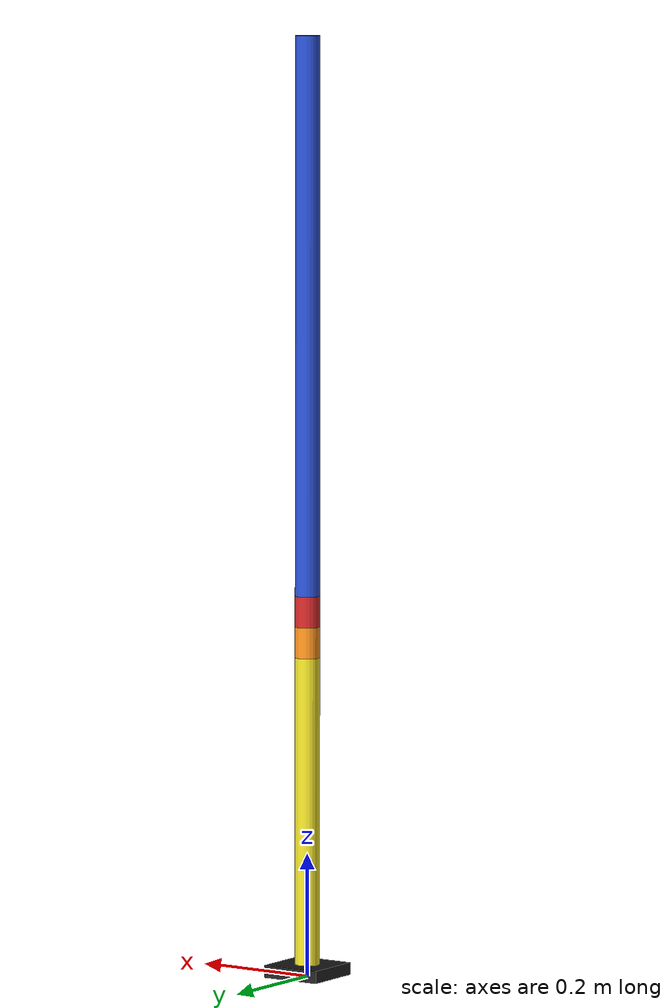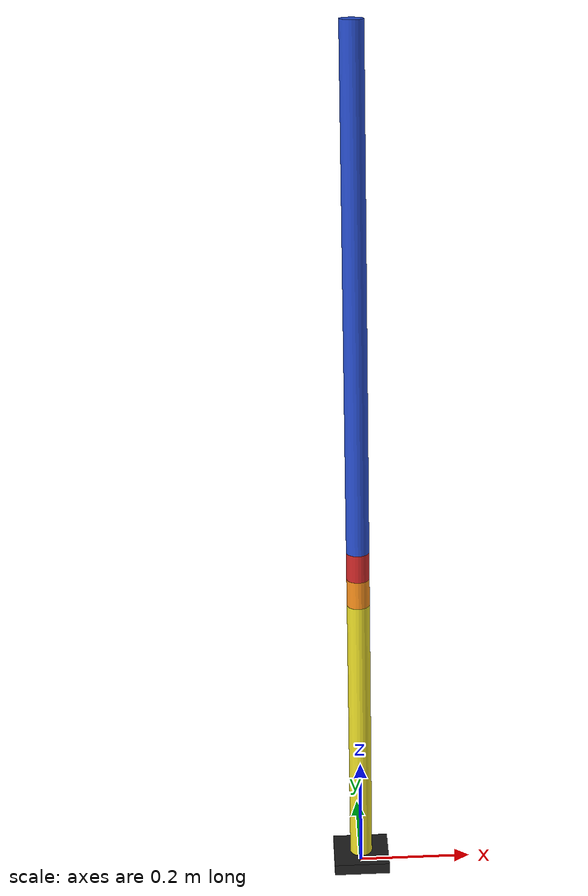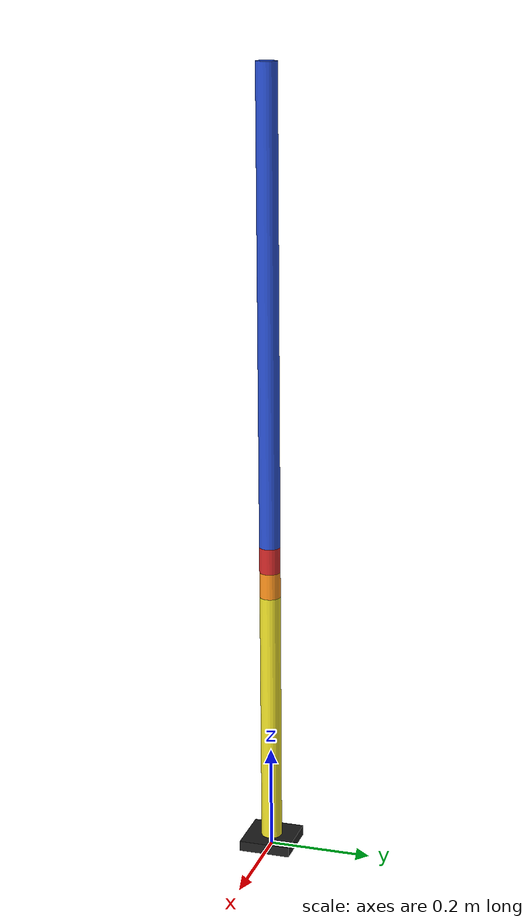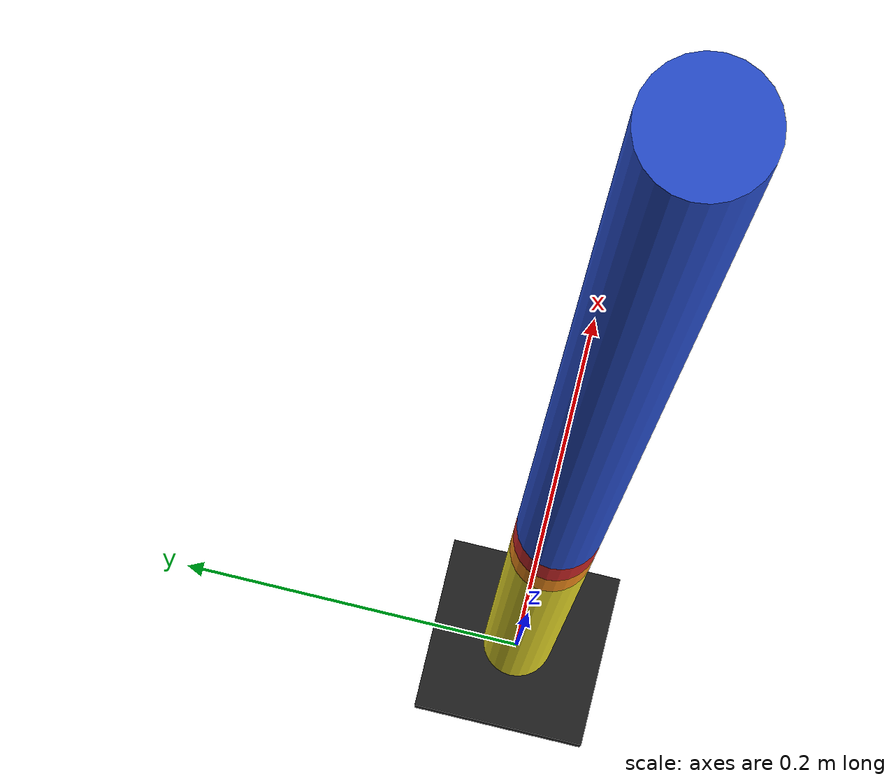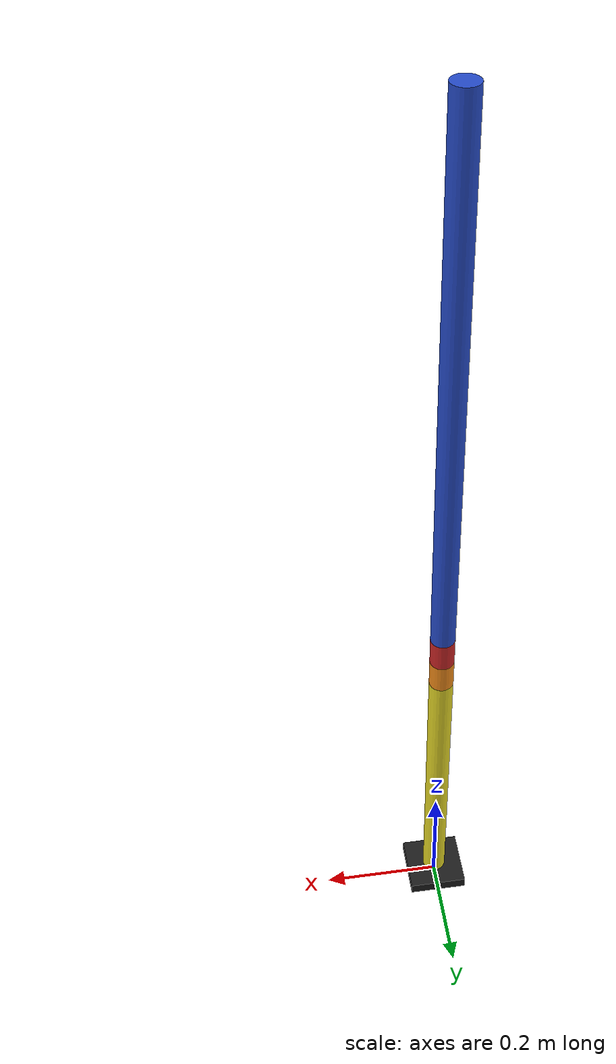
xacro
<?xml version="1.0"?>
<robot xmlns:xacro="http://www.ros.org/wiki/xacro">

    <xacro:property name="arm_base_length" value="0.1"/>
    <xacro:property name="arm_base_width" value="0.1"/>
    <xacro:property name="arm_base_height" value="0.02"/>
    <xacro:property name="arm_radius" value="0.02"/>
    <xacro:property name="arm_length" value="0.25"/>

    <!-- length link1 should be at least the length of foot collision box (0.2584 meters) -->
    <xacro:property name="link1_length" value="0.5"/>
    <!-- revolute arm links are small to keep the movement gathered -->
    <xacro:property name="revolute_arm_length" value="0.05"/>
    <!-- twist arm length is the rest of the length to get to 1 meter from end of link 1 -->
    <xacro:property name="twist_arm_length" value="${1-(revolute_arm_length*2)}"/>

    <link name="base_link">
        <visual>
            <geometry>
                <box size="${arm_base_length} ${arm_base_width} ${arm_base_height}"/>
            </geometry>
            <origin xyz="0.0 0.0 ${arm_base_height/2}" rpy="0.0 0.0 0.0"/>
            <material name="black"/>
        </visual>
        <collision>
            <geometry>
                <box size="${arm_base_length} ${arm_base_width} ${arm_base_height}"/>
            </geometry>
            <origin xyz="0.0 0.0 ${arm_base_height/2}" rpy="0.0 0.0 0.0"/>
        </collision>
        <xacro:box_inertia m="0.5" l="${arm_base_length}" w="${arm_base_width}" h="${arm_base_height}"
                           xyz="0.0 0.0 ${arm_base_height/2.0}" rpy="0.0 0.0 0.0" />
    </link>

    <link name="link1">
        <visual>
            <geometry>
                <cylinder radius="${arm_radius}" length="${link1_length}"/>
            </geometry>
            <origin xyz="0.0 0.0 ${link1_length/2}" rpy="0.0 0.0 0.0"/>
            <material name="yellow"/>
        </visual>
        <collision>
            <geometry>
                <cylinder radius="${arm_radius}" length="${link1_length}"/>
            </geometry>
            <origin xyz="0.0 0.0 ${link1_length/2}" rpy="0.0 0.0 0.0"/>
        </collision>
        <xacro:cylinder_inertia m="0.3" r="${arm_radius}" h="${link1_length}"
                                xyz="0.0 0.0 ${link1_length/2}" rpy="0.0 0.0 0.0" />
    </link>

    <link name="link2">
        <visual>
            <geometry>
                <cylinder radius="${arm_radius}" length="${revolute_arm_length}"/>
            </geometry>
            <origin xyz="0.0 0.0 ${revolute_arm_length/2}" rpy="0.0 0.0 0.0"/>
            <material name="orange"/>
        </visual>
        <collision>
            <geometry>
                <cylinder radius="${arm_radius}" length="${revolute_arm_length}"/>
            </geometry>
            <origin xyz="0.0 0.0 ${revolute_arm_length/2}" rpy="0.0 0.0 0.0"/>
        </collision>
        <xacro:cylinder_inertia m="0.3" r="${arm_radius}" h="${revolute_arm_length}"
                                xyz="0.0 0.0 ${revolute_arm_length/2}" rpy="0.0 0.0 0.0" />
    </link>

    <link name="link3">
        <visual>
            <geometry>
                <cylinder radius="${arm_radius}" length="${revolute_arm_length}"/>
            </geometry>
            <origin xyz="0.0 0.0 ${revolute_arm_length/2}" rpy="0.0 0.0 0.0"/>
            <material name="red"/>
        </visual>
        <collision>
            <geometry>
                <cylinder radius="${arm_radius}" length="${revolute_arm_length}"/>
            </geometry>
            <origin xyz="0.0 0.0 ${revolute_arm_length/2}" rpy="0.0 0.0 0.0"/>
        </collision>
        <xacro:cylinder_inertia m="0.3" r="${arm_radius}" h="${revolute_arm_length}"
                                xyz="0.0 0.0 ${revolute_arm_length/2}" rpy="0.0 0.0 0.0" />
    </link>

    <link name="link4">
        <visual>
            <geometry>
                <cylinder radius="${arm_radius}" length="${twist_arm_length}"/>
            </geometry>
            <origin xyz="0.0 0.0 ${twist_arm_length/2}" rpy="0.0 0.0 0.0"/>
            <material name="blue"/>
        </visual>
        <collision>
            <geometry>
                <cylinder radius="${arm_radius}" length="${twist_arm_length}"/>
            </geometry>
            <origin xyz="0.0 0.0 ${twist_arm_length/2}" rpy="0.0 0.0 0.0"/>
        </collision>
        <xacro:cylinder_inertia m="0.3" r="${arm_radius}" h="${twist_arm_length}"
                                xyz="0.0 0.0 ${twist_arm_length/2}" rpy="0.0 0.0 0.0" />
    </link>

    <!-- Fixed joint to slightly raise humanoid before movement -->
    <joint name="base_link1_joint" type="fixed">
        <parent link="base_link"/>
        <child link="link1"/>
        <origin xyz="0 0 ${arm_base_height}" rpy="0 0 0"/>
    </joint>

    <joint name="link1_link2_joint" type="revolute">
        <parent link="link1"/>
        <child link="link2"/>
        <axis xyz="1 0 0"/>
        <limit lower="${-pi/2}" upper="${pi/2}" velocity="100.0" effort="1000.0"/>
        <origin xyz="0 0 ${link1_length}" rpy="0 0 0"/>
    </joint>

    <joint name="link2_link3_joint" type="revolute">
        <parent link="link2"/>
        <child link="link3"/>
        <axis xyz="0 1 0"/>
        <limit lower="${-pi/2}" upper="${pi/2}" velocity="100.0" effort="1000.0"/>
        <origin xyz="0 0 ${revolute_arm_length}" rpy="0 0 0"/>
    </joint>

    <joint name="link3_link4_joint" type="revolute">
        <parent link="link3"/>
        <child link="link4"/>
        <axis xyz="0 0 1"/>
        <limit lower="${-pi/2}" upper="${pi/2}" velocity="100.0" effort="1000.0"/>
        <origin xyz="0 0 ${revolute_arm_length}" rpy="0 0 0"/>
    </joint>

</robot>
